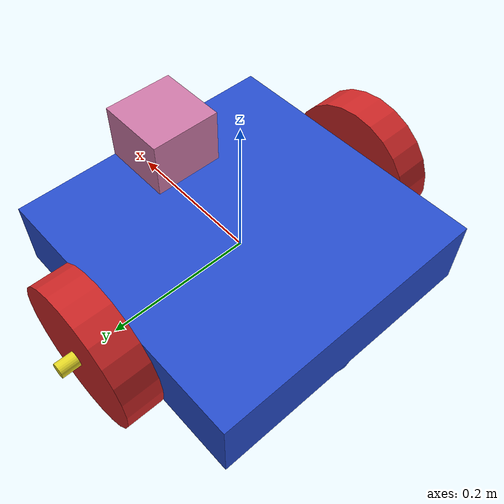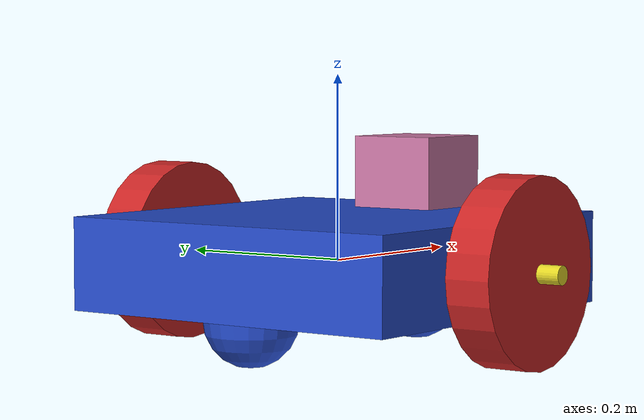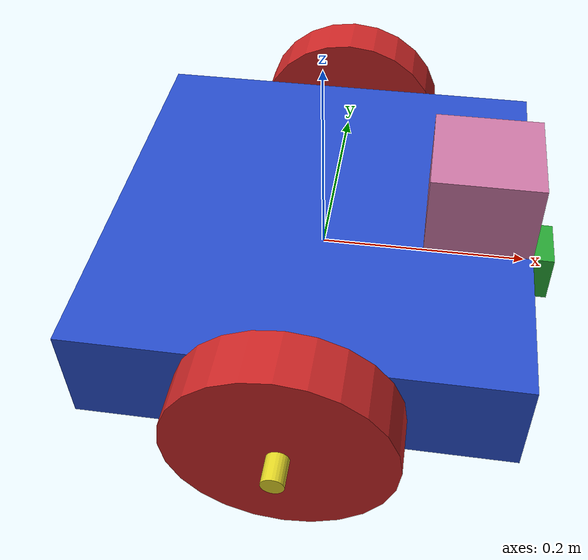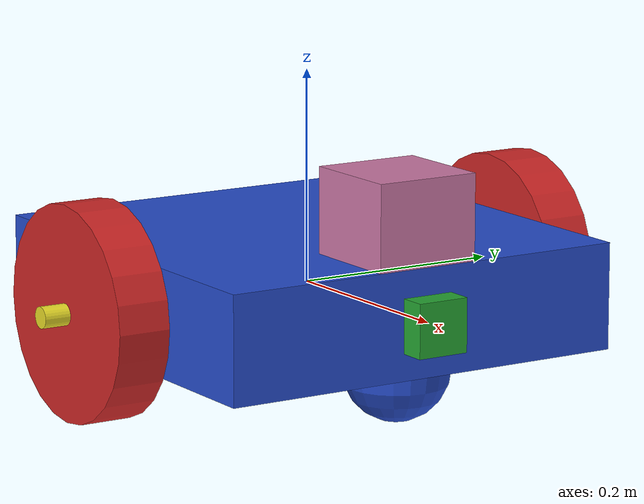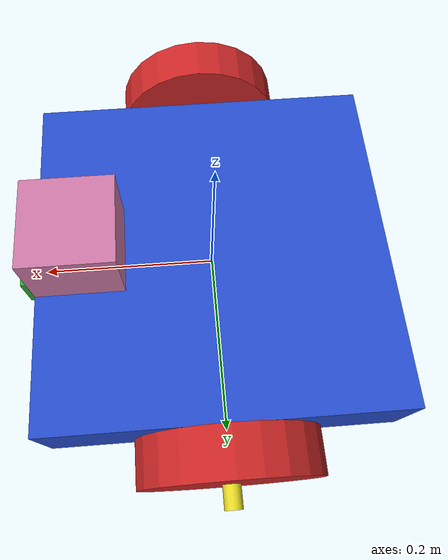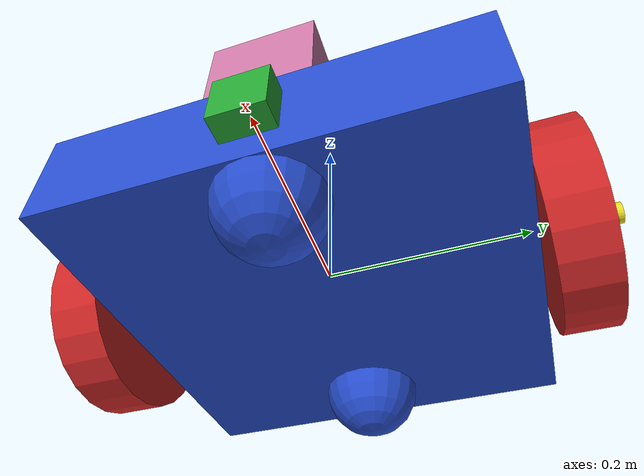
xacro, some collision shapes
<?xml version='1.0'?>

<robot name="my_robot" xmlns:xacro="http://www.ros.org/wiki/xacro">

<xacro:include filename="$(find my_robot)/urdf/my_robot.gazebo" />

 <link name="robot_footprint"></link>

  <joint name="robot_footprint_joint" type="fixed">
    <origin xyz="0 0 0" rpy="0 0 0" />
    <parent link="robot_footprint"/>
    <child link="chassis" />
  </joint>

	<link name='right_wheel'>

 <inertial>
      <mass value="5.0"/>
      <origin xyz="0.0 0 0" rpy=" 0 0 0"/>
      <inertia
          ixx="0.1" ixy="0" ixz="0"
          iyy="0.1" iyz="0"
          izz="0.1"
      />
    </inertial>

	    <collision name='right_wheel_collision'>
      <origin xyz="0 0 0" rpy=" 0 1.5707 1.5707"/>
      <geometry>
        <cylinder length="0.05" radius="0.1"/>
      </geometry>
    </collision>

    <visual name='right_wheel_visual'>
      <origin xyz="0 0 0" rpy=" 0 1.5707 1.5707"/>
      <geometry>
        <cylinder length="0.05" radius="0.1"/>
      </geometry>
    </visual>

	</link>

<link name='left_wheel'>

 <inertial>
      <mass value="5.0"/>
      <origin xyz="0.0 0 0" rpy=" 0 0 0"/>
      <inertia
          ixx="0.1" ixy="0" ixz="0"
          iyy="0.1" iyz="0"
          izz="0.1"
      />
    </inertial>

	    <collision name='left_wheel_collision'>
      <origin xyz="0 0 0" rpy=" 0 1.5707 1.5707"/>
      <geometry>
        <cylinder length="0.05" radius="0.1"/>
      </geometry>
    </collision>

    <visual name='left_wheel_visual'>
      <origin xyz="0 0 0" rpy=" 0 1.5707 1.5707"/>
      <geometry>
        <cylinder length="0.05" radius="0.1"/>
      </geometry>
    </visual>

	</link>

<link name='connect'>

 <inertial>
      <mass value="5.0"/>
      <origin xyz="0.0 0 0" rpy=" 0 0 0"/>
      <inertia
          ixx="0.1" ixy="0" ixz="0"
          iyy="0.1" iyz="0"
          izz="0.1"
      />
    </inertial>

	    <collision name='connect_collision'>
      <origin xyz="0 0 0" rpy=" 0 1.5707 1.5707"/>
      <geometry>
        <cylinder length="0.56" radius="0.01"/>
      </geometry>
    </collision>

    <visual name='connect_visual'>
      <origin xyz="0 0 0" rpy=" 0 1.5707 1.5707"/>
      <geometry>
        <cylinder length="0.56" radius="0.01"/>
      </geometry>
    </visual>

	</link>

  <link name='chassis'>
    <pose>0 0 0.1 0 0 0</pose>

    <inertial>
      <mass value="15.0"/>
      <origin xyz="0.0 0 0" rpy=" 0 0 0"/>
      <inertia
          ixx="0.1" ixy="0" ixz="0"
          iyy="0.1" iyz="0"
          izz="0.1"
      />
    </inertial>

    <collision name='collision'>
      <origin xyz="0 0 0" rpy=" 0 0 0"/>
      <geometry>
        <box size=".4 .4 .1"/>
      </geometry>
    </collision>

    <visual name='chassis_visual'>
      <origin xyz="0 0 0" rpy=" 0 0 0"/>
      <geometry>
        <box size=".4 .4 .1"/>
      </geometry>
    </visual>

    <collision name='back_caster_collision'>
      <origin xyz="-0.15 0 -0.05" rpy=" 0 0 0"/>
      <geometry>
        <sphere radius="0.0499"/>
      </geometry>
    </collision>

    <visual name='back_caster_visual'>
      <origin xyz="-0.15 0 -0.05" rpy=" 0 0 0"/>
      <geometry>
        <sphere radius="0.05"/>
      </geometry>
    </visual>

    <collision name='front_caster_collision'>
      <origin xyz="0.15 0 -0.05" rpy=" 0 0 0"/>
      <geometry>
        <sphere radius="0.0499"/>
      </geometry>
    </collision>

    <visual name='front_caster_visual'>
      <origin xyz="0.15 0 -0.05" rpy=" 0 0 0"/>
      <geometry>
        <sphere radius="0.05"/>
      </geometry>
    </visual>

  </link>

	<link name='camera'>
		<origin xyz="0 0 0" rpy=" 0 0 0"/>
		<mass value="0.1"/>

 		<inertial>
      <origin xyz="0 0 0" rpy=" 0 0 0"/>
			<mass value="0.1"/>
      <inertia
          ixx="1e-6" ixy="0" ixz="0"
          iyy="1e-6" iyz="0"
          izz="1e-6"
      />
    </inertial>

    <collision name='camera_collision'>
      <origin xyz="0.0 0 0" rpy=" 0 0 0"/>
      <geometry>
        <box size=".05 .05 .05"/>
      </geometry>
    </collision>

    <visual name='camera_visual'>
      <origin xyz="0.0 0 0" rpy=" 0 0 0"/>
      <geometry>
        <box size=".05 .05 .05"/>
      </geometry>
    </visual>
	</link>

	<link name="hokuyo">
		<orgin xyz="0 0 0" rpy="0 0 0"/>

 		<inertial>
      <origin xyz="0 0 0" rpy=" 0 0 0"/>
			<mass value="1e-5"/>
      <inertia
          ixx="1e-6" ixy="0" ixz="0"
          iyy="1e-6" iyz="0"
          izz="1e-6"
      />
    </inertial>

    <collision name='hokuyo_collision'>
      <origin xyz="0.0 0 0" rpy=" 0 0 0"/>
      <geometry>
        <box size=".1 .1 .1"/>
      </geometry>
    </collision>

    <visual name='hokuyo_visual'>
      <origin xyz="0.0 0 0" rpy=" 0 0 0"/>
      <geometry>
        <mesh filename="package://my_robot/meshes/hokuyo.dae"/>
      </geometry>
    </visual>
	</link>

  <joint type="continuous" name="left_wheel_hinge">
    <origin xyz="0 0.23 0" rpy="0 0 0"/>
    <child link="left_wheel"/>
    <parent link="chassis"/>
    <axis xyz="0 1 0" rpy="0 0 0"/>
    <limit effort="10000" velocity="1000"/>
    <dynamics damping="1.0" friction="1.0"/>
  </joint>

  <joint type="continuous" name="right_wheel_hinge">
    <origin xyz="0 -0.23 0" rpy="0 0 0"/>
    <child link="right_wheel"/>
    <parent link="chassis"/>
    <axis xyz="0 1 0" rpy="0 0 0"/>
    <limit effort="10000" velocity="1000"/>
    <dynamics damping="1.0" friction="1.0"/>
  </joint>

  <joint type="fixed" name="camera_joint">
    <origin xyz="0.2 0 0" rpy="0 0 0"/>
    <child link="camera"/>
    <parent link="chassis"/>
    <axis xyz="0 1 0" rpy="0 0 0"/>
  </joint>

  <joint type="fixed" name="hokuyo_joint">
    <origin xyz="0.15 0 0.08" rpy="0 0 0"/>
    <child link="hokuyo"/>
    <parent link="chassis"/>
    <axis xyz="0 1 0" rpy="0 0 0"/>
  </joint>

  <joint type="fixed" name="connect_joint">
    <origin xyz="0 0 0" rpy="0 0 0"/>
    <child link="connect"/>
    <parent link="chassis"/>
    <axis xyz="0 0 0" rpy="0 0 0"/>
  </joint>

<gazebo reference="left_wheel">
    <material>Gazebo/Red</material>
</gazebo>

<gazebo reference="right_wheel">
    <material>Gazebo/Red</material>
</gazebo>

<gazebo reference="chassis">
    <material>Gazebo/Blue</material>
</gazebo>

<gazebo reference="camera">
    <material>Gazebo/Green</material>
</gazebo>

<gazebo reference="connect">
    <material>Gazebo/Yellow</material>
</gazebo>

</robot>
